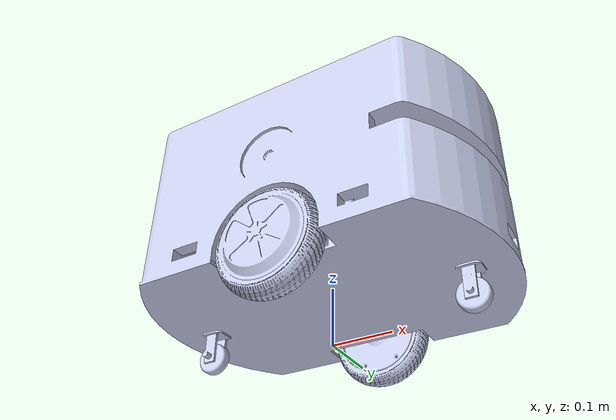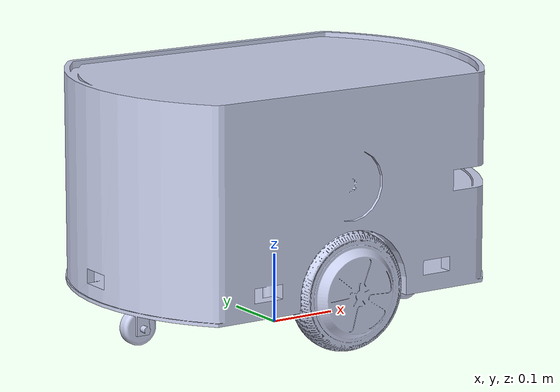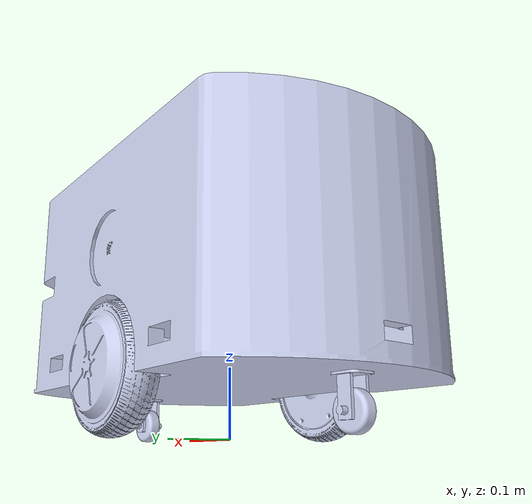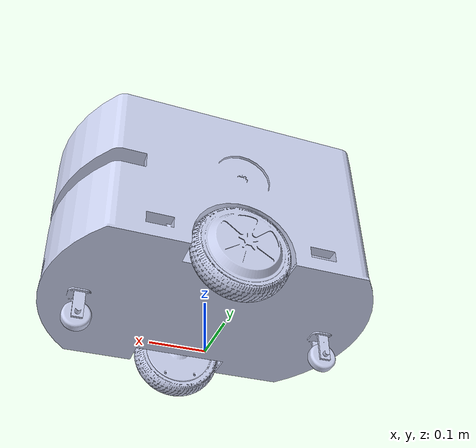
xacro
<?xml version="1.0" ?>

<robot xmlns:xacro="http://ros.org/wiki/xacro">

  <link name="base_footprint"/>

  <link
    name="base_link">
    <inertial>
      <origin
        xyz="0.00298593644358607 -0.000268295172875241 0.154640959753498"
        rpy="0 0 0" />
      <mass
        value="12.0012331336924" />
      <inertia
        ixx="0.35866059453322"
        ixy="4.67770377513155E-08"
        ixz="0.000423861580413772"
        iyy="0.233823654906046"
        iyz="4.66362844507336E-09"
        izz="0.375131573810826" />
    </inertial>
    <visual>
      <origin
        xyz="0 0 0"
        rpy="0 0 0" />
      <geometry>
        <mesh
          filename="package://rospital_description/meshes/base_link.STL" />
      </geometry>
      <material
        name="">
        <color
          rgba="0.792156862745098 0.819607843137255 0.933333333333333 1" />
      </material>
    </visual>
    <collision>
      <origin
        xyz="0 0 0"
        rpy="0 0 0" />
      <geometry>
        <mesh
          filename="package://rospital_description/meshes/base_link.STL" />
      </geometry>
    </collision>
  </link>
  <joint name="base_joint" type="fixed">
    <parent link="base_footprint"/>
    <child link="base_link" />
    <origin xyz="0 0 0.0701" rpy="0 0 0"/>
  </joint>
  <link
    name="wheel_left_link">
    <inertial>
      <origin
        xyz="-8.64344718974191E-06 0.0228237946886783 7.57765177879927E-08"
        rpy="0 0 0" />
      <mass
        value="0.778339693950675" />
      <inertia
        ixx="0.00165430356623842"
        ixy="6.08982301451092E-09"
        ixz="3.56600628105672E-11"
        iyy="0.0030911762450513"
        iyz="-2.8372582055542E-11"
        izz="0.00165423410528579" />
    </inertial>
    <visual>
      <origin
        xyz="0 0 0"
        rpy="0 0 0" />
      <geometry>
        <mesh
          filename="package://rospital_description/meshes/wheel_left_link.STL" />
      </geometry>
      <material
        name="">
        <color
          rgba="0.792156862745098 0.819607843137255 0.933333333333333 1" />
      </material>
    </visual>
    <collision>
      <origin
        xyz="0 0 0"
        rpy="0 0 0" />
      <geometry>
        <mesh
          filename="package://rospital_description/meshes/wheel_left_link.STL" />
      </geometry>
    </collision>
  </link>
  <joint
    name="wheel_left_joint"
    type="continuous">
    <origin
      xyz="0 0.161 0.0154413114931434"
      rpy="0 0 0" />
    <parent
      link="base_link" />
    <child
      link="wheel_left_link" />
    <axis
      xyz="0 1 0" />
  </joint>
  <link
    name="wheel_right_link">
    <inertial>
      <origin
        xyz="8.64344718911542E-06 -0.0228237946886785 7.57765181002429E-08"
        rpy="0 0 0" />
      <mass
        value="0.778339693950669" />
      <inertia
        ixx="0.00165430356623842"
        ixy="6.08982301952646E-09"
        ixz="-3.56600611496615E-11"
        iyy="0.00309117624505131"
        iyz="2.83725665326271E-11"
        izz="0.0016542341052858" />
    </inertial>
    <visual>
      <origin
        xyz="0 0 0"
        rpy="0 0 0" />
      <geometry>
        <mesh
          filename="package://rospital_description/meshes/wheel_right_link.STL" />
      </geometry>
      <material
        name="">
        <color
          rgba="0.792156862745098 0.819607843137255 0.933333333333333 1" />
      </material>
    </visual>
    <collision>
      <origin
        xyz="0 0 0"
        rpy="0 0 0" />
      <geometry>
        <mesh
          filename="package://rospital_description/meshes/wheel_right_link.STL" />
      </geometry>
    </collision>
  </link>
  <joint
    name="wheel_right_joint"
    type="continuous">
    <origin
      xyz="0 -0.161 0.0154413114931451"
      rpy="0 0 0" />
    <parent
      link="base_link" />
    <child
      link="wheel_right_link" />
    <axis
      xyz="0 1 0" />
  </joint>
  <link
    name="caster_front_link">
    <inertial>
      <origin
        xyz="0.000805650652548229 5.72729797615468E-17 -4.48165838715792E-06"
        rpy="0 0 0" />
      <mass
        value="0.0386238363179237" />
      <inertia
        ixx="7.66294109641648E-06"
        ixy="-1.82721726780336E-20"
        ixz="2.42889623642253E-11"
        iyy="1.29044379500025E-05"
        iyz="-4.77133079419545E-24"
        izz="7.66293122817673E-06" />
    </inertial>
    <visual>
      <origin
        xyz="0 0 0"
        rpy="0 0 0" />
      <geometry>
        <mesh
          filename="package://rospital_description/meshes/caster_front_link.STL" />
      </geometry>
      <material
        name="">
        <color
          rgba="0.792156862745098 0.819607843137255 0.933333333333333 1" />
      </material>
    </visual>
    <collision>
      <origin
        xyz="0 0 0"
        rpy="0 0 0" />
      <geometry>
        <mesh
          filename="package://rospital_description/meshes/caster_front_link.STL" />
      </geometry>
    </collision>
  </link>
  <joint
    name="caster_front_joint"
    type="fixed">
    <origin
      xyz="0.229250238887004 -0.000124017376899337 -0.0431115511971616"
      rpy="0 0 0" />
    <parent
      link="base_link" />
    <child
      link="caster_front_link" />
    <axis
      xyz="0 0 0" />
  </joint>
  <link
    name="caster_rear_link">
    <inertial>
      <origin
        xyz="-0.000805650652548229 -6.01461155186334E-17 -4.48165838716486E-06"
        rpy="0 0 0" />
      <mass
        value="0.0386238363179237" />
      <inertia
        ixx="7.66294109641648E-06"
        ixy="-3.86943114962554E-20"
        ixz="-2.42889623642257E-11"
        iyy="1.29044379500025E-05"
        iyz="-7.32910421549178E-20"
        izz="7.66293122817673E-06" />
    </inertial>
    <visual>
      <origin
        xyz="0 0 0"
        rpy="0 0 0" />
      <geometry>
        <mesh
          filename="package://rospital_description/meshes/caster_rear_link.STL" />
      </geometry>
      <material
        name="">
        <color
          rgba="0.792156862745098 0.819607843137255 0.933333333333333 1" />
      </material>
    </visual>
    <collision>
      <origin
        xyz="0 0 0"
        rpy="0 0 0" />
      <geometry>
        <mesh
          filename="package://rospital_description/meshes/caster_rear_link.STL" />
      </geometry>
    </collision>
  </link>
  <joint
    name="caster_rear_joint"
    type="fixed">
    <origin
      xyz="-0.229157886818826 -0.000123712642857387 -0.0431115511971648"
      rpy="0 0 0" />
    <parent
      link="base_link" />
    <child
      link="caster_rear_link" />
    <axis
      xyz="0 0 0" />
  </joint>
</robot>
